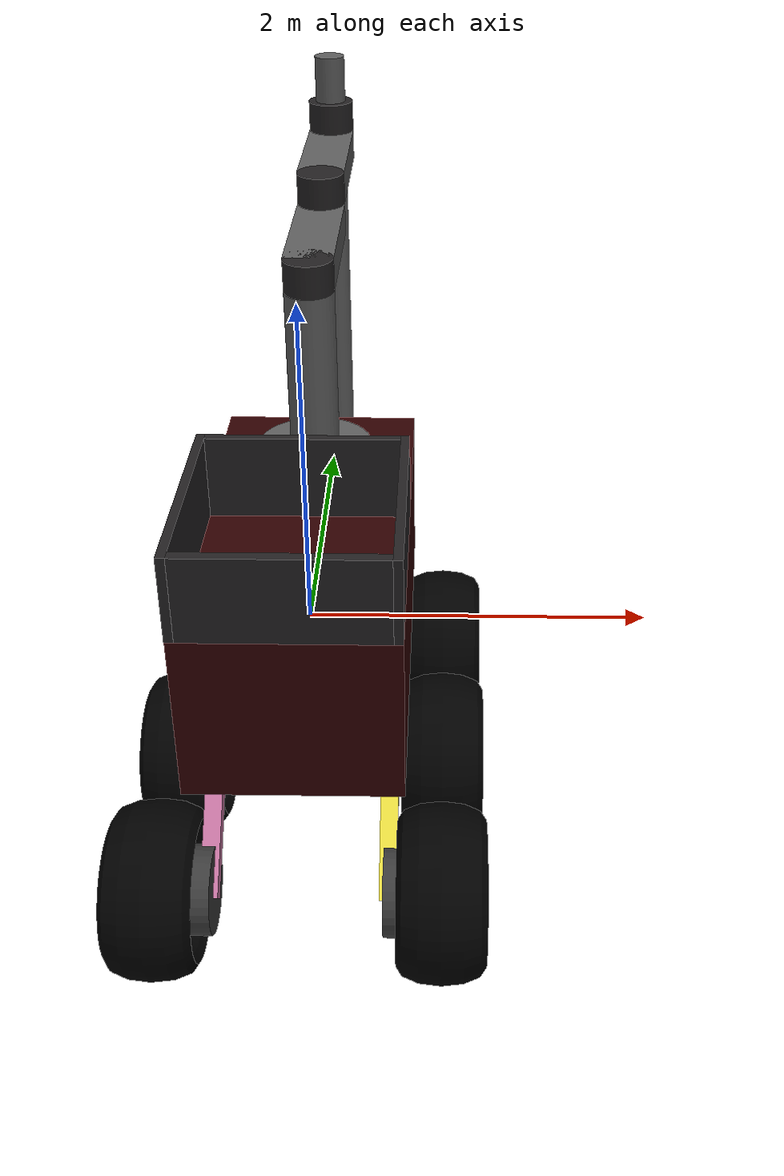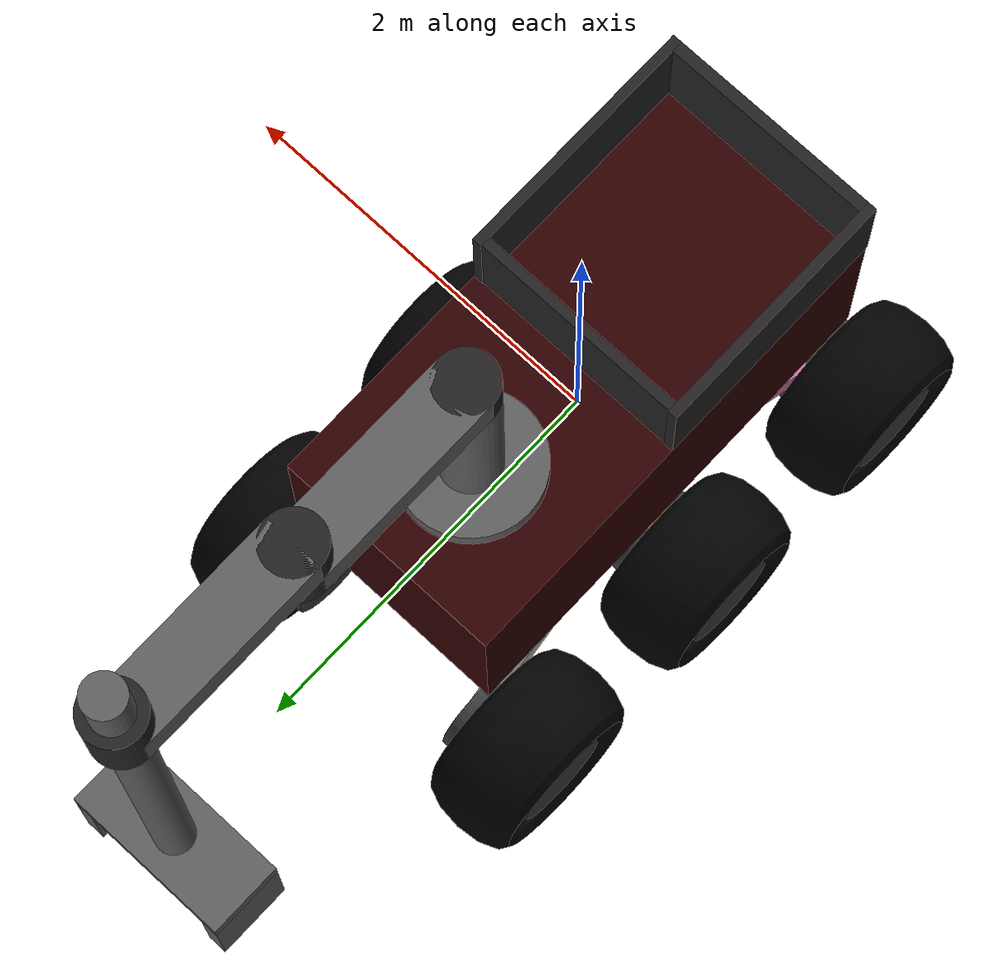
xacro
<?xml version="1.0"?>
<robot xmlns:xacro="http://www.ros.org/wiki/xacro" name="rover">

    <!-- includes -->
    <xacro:include filename="$(find rover_description)/urdf/base/robot_base.urdf.xacro"/>
    <xacro:include filename="$(find rover_description)/urdf/wheels/rover_wheel.urdf.xacro"/>
    <xacro:include filename="$(find rover_description)/urdf/arm/scara.urdf.xacro"/>
    <xacro:include filename="$(find rover_description)/urdf/arm/gripper.urdf.xacro"/>
    <xacro:include filename="$(find rover_description)/urdf/ros2_control.urdf.xacro"/>
    <xacro:include filename="$(find rover_description)/urdf/utils/utils.urdf.xacro"/>

    <xacro:include filename="$(find rover_description)/urdf/sensors/camera_grip.urdf.xacro"/>
    <xacro:include filename="$(find rover_description)/urdf/sensors/front_camera.urdf.xacro"/>
    <xacro:include filename="$(find rover_description)/urdf/sensors/imu_sensor.urdf.xacro"/>

    <!-- argumentos -->
    <xacro:arg name="robot_ns" default=""/>
    <xacro:arg name="prefix" default=""/>

    <!-- Robot Parts -->

    <!-- Base -->
    <xacro:robot_base/>

    <!-- utils -->
    <xacro:utils/>

    <!-- Wheels -->
    <xacro:rover_wheel parent_link="base_link">
    </xacro:rover_wheel>

    <!-- Arm -->
    <xacro:scara parent_link="base_link">
    </xacro:scara>
    <xacro:gripper parent_link="Cilindro_verti_5_link">
    </xacro:gripper>

    <!-- Sensors -->
    <xacro:camera_grip parent_link="base_link">
    </xacro:camera_grip>

    <xacro:front_camera parent_link="base_link">
    </xacro:front_camera>

    <xacro:imu_sensor parent_link="base_link">
    </xacro:imu_sensor>

    <!-- Gazebo ROS control plugins -->

    <xacro:arg name="config_controllers" default="$(find rover_description)/config/rover_control.yaml"/>
    <xacro:arg name="update_rate" default="100"/>

    <xacro:ros2_control/>
</robot>

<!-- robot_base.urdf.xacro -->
<!-- created with Phobos 1.0.1 "Capricious Choutengan" -->
<robot name="rover" xmlns:xacro="http://wiki.ros.org/xacro">

  <xacro:macro name="robot_base">

    <joint name="pared_d_link_joint" type="fixed">
      <origin rpy="0.00000 -1.57080 0.00000" xyz="0.57500 -0.61000 0.75000"/>
      <parent link="base_link"/>
      <child link="pared_d_link"/>
    </joint>
    <joint name="pared_delantera_link_joint" type="fixed">
      <origin rpy="1.57080 -1.57080 0.00000" xyz="0.00000 0.01000 0.75000"/>
      <parent link="base_link"/>
      <child link="pared_delantera_link"/>
    </joint>
    <joint name="pared_i_link_joint" type="fixed">
      <origin rpy="-0.00000 1.57080 0.00000" xyz="-0.57500 -0.61000 0.75000"/>
      <parent link="base_link"/>
      <child link="pared_i_link"/>
    </joint>
    <joint name="pared_trasera_link_joint" type="fixed">
      <origin rpy="-1.57080 1.57080 0.00000" xyz="0.00000 -1.23000 0.75000"/>
      <parent link="base_link"/>
      <child link="pared_trasera_link"/>
    </joint>

    <link name="Cilindro_link">
      <collision name="Cilindro_collision">
        <origin rpy="0.00000 -0.00000 0.00000" xyz="-0.00000 0.00000 -0.00000"/>
        <geometry>
          <mesh filename="file://$(find rover_description)/meshes/dae/Cilindro.008.dae" scale="0.15000 0.15000 0.10000"/>
        </geometry>
      </collision>
      <inertial>
        <inertia ixx="0.00223" ixy="0.00000" ixz="-0.00000" iyy="0.00223" iyz="0.00000" izz="0.00279"/>
        <origin rpy="0.00000 0.00000 0.00000" xyz="-0.00000 0.00000 -0.00000"/>
        <mass value="0.25000"/>
      </inertial>
      <visual name="Cilindro">
        <origin rpy="0.00000 0.00000 0.00000" xyz="0.00000 0.00000 0.00000"/>
        <material name="Material"/>
        <geometry>
          <mesh filename="file://$(find rover_description)/meshes/dae/Cilindro.008.dae" scale="0.15000 0.15000 0.10000"/>
        </geometry>
      </visual>
    </link>

    <joint name="base_link_joint" type="fixed">
      <origin rpy="0.00000 0.00000 0.00000" xyz="0.00000 0.00000 0.20000"/>
      <parent link="base_footprint"/>
      <child link="base_link"/>
    </joint>
    <link name="base_footprint"/>
    <link name="base_link">
      <collision name="Cube_collision">
        <origin rpy="0.00000 0.00000 0.00000" xyz="0.00000 0.00000 0.00000"/>
        <geometry>
          <box size="1.20000 2.50000 1.00000"/>
        </geometry>
      </collision>
      <inertial>
        <inertia ixx="18.12499" ixy="-0.00000" ixz="0.00000" iyy="6.10000" iyz="0.00000" izz="19.22499"/>
        <origin rpy="0.00000 0.00000 0.00000" xyz="0.00000 0.00000 0.00000"/>
        <mass value="30.00000"/>
      </inertial>
      <visual name="Cube">
        <origin rpy="0.00000 0.00000 0.00000" xyz="0.00000 0.00000 0.00000"/>
        <material name="Material.002"/>
        <geometry>
          <mesh filename="file://$(find rover_description)/meshes/dae/Cube.dae" scale="0.60000 1.25000 0.50000"/>
        </geometry>
      </visual>
    </link>

    <link name="pared_d_link">
      <collision name="pared_d_collision">
        <origin rpy="-0.00000 1.57080 0.00000" xyz="-0.00000 0.00000 0.00000"/>
        <geometry>
          <box size="0.05000 1.30000 0.50000"/>
        </geometry>
      </collision>
      <visual name="pared_d">
        <origin rpy="-0.00000 1.57080 0.00000" xyz="-0.00000 0.00000 -0.00000"/>
        <material name="Material"/>
        <geometry>
          <box size="0.05000 1.30000 0.50000"/>
        </geometry>
      </visual>
    </link>
    <link name="pared_delantera_link">
      <collision name="pared_delantera_collision">
        <origin rpy="1.92225 1.57080 1.92225" xyz="0.00000 -0.00000 0.00000"/>
        <geometry>
          <box size="0.05000 1.10000 0.50000"/>
        </geometry>
      </collision>
      <visual name="pared_delantera">
        <origin rpy="2.12339 1.57080 2.12339" xyz="-0.00000 -0.00000 0.00000"/>
        <material name="Material"/>
        <geometry>
          <box size="0.05000 1.10000 0.50000"/>
        </geometry>
      </visual>
    </link>
    <link name="pared_i_link">
      <collision name="pared_i_collision">
        <origin rpy="0.00000 -1.57080 0.00000" xyz="0.00000 0.00000 0.00000"/>
        <geometry>
          <box size="0.05000 1.30000 0.50000"/>
        </geometry>
      </collision>
      <visual name="pared_i">
        <origin rpy="0.00000 -1.57080 0.00000" xyz="-0.00000 -0.00000 -0.00000"/>
        <material name="Material"/>
        <geometry>
          <box size="0.05000 1.30000 0.50000"/>
        </geometry>
      </visual>
    </link>
    <link name="pared_trasera_link">
      <collision name="pared_trasera_collision">
        <origin rpy="-1.57080 -1.57080 1.57080" xyz="0.00000 0.00000 0.00000"/>
        <geometry>
          <box size="0.06000 1.10000 0.50000"/>
        </geometry>
      </collision>
      <visual name="pared_trasera">
        <origin rpy="-1.57080 -1.57080 1.57080" xyz="0.00000 0.00000 -0.00000"/>
        <material name="Material"/>
        <geometry>
          <box size="0.06000 1.10000 0.50000"/>
        </geometry>
      </visual>
    </link>

  </xacro:macro>
</robot>

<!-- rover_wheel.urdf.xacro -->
<!-- created with Phobos 1.0.1 "Capricious Choutengan" -->
<robot name="rover" xmlns:xacro="http://wiki.ros.org/xacro">

  <xacro:macro name="rover_wheel" params="parent_link">

    <!-- Ruedas -->
    <!-- ROBOT NAME? -->
    <joint name="Rueda_D1_link_joint" type="continuous">
      <limit lower="0" upper="0" effort="25.00000" velocity="5.00000"/>
      <origin rpy="3.14159 0.00000 3.14159" xyz="-0.00000 0.00000 -0.05000"/>
      <parent link="Cilindro_D1_link"/>
      <child link="Rueda_D1_link"/>
      <axis xyz="0.00000 0.00000 1.00000"/>
    </joint>
    <joint name="Rueda_D2_link_joint" type="continuous">
      <limit lower="0" upper="0" effort="25.00000" velocity="5.00000"/>
      <origin rpy="3.14159 0.00000 -3.14159" xyz="-0.00000 -0.00000 -0.05000"/>
      <parent link="Cilindro_D2_link"/>
      <child link="Rueda_D2_link"/>
      <axis xyz="0.00000 0.00000 1.00000"/>
    </joint>
    <joint name="Rueda_D3_link_joint" type="continuous">
      <limit lower="0" upper="0" effort="25.00000" velocity="5.00000"/>
      <origin rpy="3.14159 0.00000 3.14159" xyz="0.00000 -0.00000 -0.05000"/>
      <parent link="Cilindro_D3_link"/>
      <child link="Rueda_D3_link"/>
      <axis xyz="0.00000 0.00000 1.00000"/>
    </joint>
    <joint name="Rueda_I1_link_joint" type="continuous">
      <limit lower="0" upper="0" effort="25.00000" velocity="5.00000"/>
      <origin rpy="3.14159 -0.00000 -3.14159" xyz="0.00000 -0.00000 -0.05000"/>
      <parent link="Cilindro_i1_link"/>
      <child link="Rueda_I1_link"/>
      <axis xyz="0.00000 0.00000 1.00000"/>
    </joint>
    <joint name="Rueda_I2_link_joint" type="continuous">
      <limit lower="0" upper="0" effort="25.00000" velocity="5.00000"/>
      <origin rpy="3.14159 -0.00000 3.14159" xyz="-0.00000 -0.00000 -0.05000"/>
      <parent link="Cilindro_i2_link"/>
      <child link="Rueda_I2_link"/>
      <axis xyz="0.00000 0.00000 1.00000"/>
    </joint>
    <joint name="Rueda_i3_link_joint" type="continuous">
      <limit lower="0" upper="0" effort="25.00000" velocity="5.00000"/>
      <origin rpy="3.14159 -0.00000 -3.14159" xyz="0.00000 -0.00000 -0.05000"/>
      <parent link="Cilindro_i3_link"/>
      <child link="Rueda_i3_link"/>
      <axis xyz="0.00000 0.00000 1.00000"/>
    </joint>

    <!-- llantas -->

    <joint name="Cilindro_D1_link_joint" type="fixed">
      <origin rpy="1.57080 0.78540 -1.57080" xyz="0.25000 0.03536 -0.60104"/>
      <parent link="Cubo_d1_link"/>
      <child link="Cilindro_D1_link"/>
    </joint>
    <joint name="Cilindro_D2_link_joint" type="fixed">
      <origin rpy="1.57080 0.00000 -1.57080" xyz="0.25000 0.00000 -0.55000"/>
      <parent link="Cubo_d2_link"/>
      <child link="Cilindro_D2_link"/>
    </joint>
    <joint name="Cilindro_D3_link_joint" type="fixed">
      <origin rpy="1.57080 -0.78540 -1.57080" xyz="0.25000 -0.03536 -0.60104"/>
      <parent link="Cubo_d3_link"/>
      <child link="Cilindro_D3_link"/>
    </joint>
    <joint name="Cilindro_i1_link_joint" type="fixed">
      <origin rpy="1.57080 -0.78540 1.57080" xyz="-0.25000 0.03536 -0.60104"/>
      <parent link="Cubo_i1_link"/>
      <child link="Cilindro_i1_link"/>
    </joint>
    <joint name="Cilindro_i2_link_joint" type="fixed">
      <origin rpy="1.57080 -0.00000 1.57080" xyz="-0.25000 0.00000 -0.55000"/>
      <parent link="Cubo_i3_link"/>
      <child link="Cilindro_i2_link"/>
    </joint>
    <joint name="Cilindro_i3_link_joint" type="fixed">
      <origin rpy="1.57080 0.78540 1.57080" xyz="-0.25000 -0.03536 -0.60104"/>
      <parent link="Cubo_i2_link"/>
      <child link="Cilindro_i3_link"/>
    </joint>

    <!-- CONEXIONES -->

    <joint name="Cubo_d1_link_joint" type="fixed">
      <origin rpy="-0.78540 0.00000 0.00000" xyz="0.50000 -0.80000 -0.80000"/>
      <parent link="${parent_link}"/>
      <child link="Cubo_d1_link"/>
    </joint>
    <joint name="Cubo_d2_link_joint" type="fixed">
      <origin rpy="0.78540 0.00000 0.00000" xyz="0.50000 0.80000 -0.80000"/>
      <parent link="${parent_link}"/>
      <child link="Cubo_d3_link"/>
    </joint>
    <joint name="Cubo_d3_link_joint" type="fixed">
      <origin rpy="0.00000 0.00000 0.00000" xyz="0.50000 0.00000 -0.70000"/>
      <parent link="${parent_link}"/>
      <child link="Cubo_d2_link"/>
    </joint>
    <joint name="Cubo_i1_link_joint" type="fixed">
      <origin rpy="-0.78540 0.00000 0.00000" xyz="-0.50000 -0.80000 -0.80000"/>
      <parent link="${parent_link}"/>
      <child link="Cubo_i1_link"/>
    </joint>
    <joint name="Cubo_i2_link_joint" type="fixed">
      <origin rpy="0.78540 0.00000 0.00000" xyz="-0.50000 0.80000 -0.80000"/>
      <parent link="${parent_link}"/>
      <child link="Cubo_i2_link"/>
    </joint>
    <joint name="Cubo_i3_link_joint" type="fixed">
      <origin rpy="0.00000 0.00000 0.00000" xyz="-0.50000 0.00000 -0.70000"/>
      <parent link="${parent_link}"/>
      <child link="Cubo_i3_link"/>
    </joint>

    <!-- link RUEDAS -->

    <link name="Rueda_D1_link">
      <collision name="Rueda_D1_collision">
        <origin rpy="0.00000 0.00000 -0.00000" xyz="-0.00000 0.00000 0.00000"/>
        <geometry>
          <mesh filename="file://$(find rover_description)/meshes/dae/Rosca.dae" scale="0.40000 0.40000 1.00000"/>
        </geometry>
      </collision>
      <visual name="Rueda_D1">
        <origin rpy="0.00000 -0.00000 -0.00000" xyz="-0.00000 0.00000 0.00000"/>
        <material name="Material.007"/>
        <geometry>
          <mesh filename="file://$(find rover_description)/meshes/dae/Rosca.dae" scale="0.40000 0.40000 1.00000"/>
        </geometry>
      </visual>
    </link>
    <link name="Rueda_D2_link">
      <collision name="Rueda_D2_collision">
        <origin rpy="0.00000 0.00000 0.00000" xyz="0.00000 -0.00000 0.00000"/>
        <geometry>
          <mesh filename="file://$(find rover_description)/meshes/dae/Rosca.005.dae" scale="0.40000 0.40000 1.00000"/>
        </geometry>
      </collision>
      <visual name="Rueda_D2">
        <origin rpy="-0.00000 -0.00000 0.00000" xyz="-0.00000 0.00000 0.00000"/>
        <material name="Material.007"/>
        <geometry>
          <mesh filename="file://$(find rover_description)/meshes/dae/Rosca.005.dae" scale="0.40000 0.40000 1.00000"/>
        </geometry>
      </visual>
    </link>
    <link name="Rueda_D3_link">
      <collision name="Rueda_D3_collision">
        <origin rpy="0.00000 0.00000 0.00000" xyz="0.00000 0.00000 0.00000"/>
        <geometry>
          <mesh filename="file://$(find rover_description)/meshes/dae/Rosca.001.dae" scale="0.40000 0.40000 1.00000"/>
        </geometry>
      </collision>
      <visual name="Rueda_D3">
        <origin rpy="0.00000 0.00000 0.00000" xyz="0.00000 0.00000 0.00000"/>
        <material name="Material.007"/>
        <geometry>
          <mesh filename="file://$(find rover_description)/meshes/dae/Rosca.001.dae" scale="0.40000 0.40000 1.00000"/>
        </geometry>
      </visual>
    </link>
    <link name="Rueda_I1_link">
      <collision name="Rueda_I1_collision">
        <origin rpy="3.14159 0.00000 -3.14159" xyz="0.00000 0.00000 0.00000"/>
        <geometry>
          <mesh filename="file://$(find rover_description)/meshes/dae/Rosca.004.dae" scale="0.40000 0.40000 1.00000"/>
        </geometry>
      </collision>
      <visual name="Rueda_I1">
        <origin rpy="3.14159 0.00000 -3.14159" xyz="0.00000 0.00000 0.00000"/>
        <material name="Material.007"/>
        <geometry>
          <mesh filename="file://$(find rover_description)/meshes/dae/Rosca.004.dae" scale="0.40000 0.40000 1.00000"/>
        </geometry>
      </visual>
    </link>
    <link name="Rueda_I2_link">
      <collision name="Rueda_I2_collision">
        <origin rpy="3.14159 0.00000 -3.14159" xyz="-0.00000 -0.00000 0.00000"/>
        <geometry>
          <mesh filename="file://$(find rover_description)/meshes/dae/Rosca.003.dae" scale="0.40000 0.40000 1.00000"/>
        </geometry>
      </collision>
      <visual name="Rueda_I2">
        <origin rpy="3.14159 0.00000 3.14159" xyz="0.00000 0.00000 0.00000"/>
        <material name="Material.007"/>
        <geometry>
          <mesh filename="file://$(find rover_description)/meshes/dae/Rosca.003.dae" scale="0.40000 0.40000 1.00000"/>
        </geometry>
      </visual>
    </link>
    <link name="Rueda_i3_link">
      <collision name="Rueda_i3_collision">
        <origin rpy="3.14159 -0.00000 3.14159" xyz="0.00000 0.00000 0.00000"/>
        <geometry>
          <mesh filename="file://$(find rover_description)/meshes/dae/Rosca.002.dae" scale="0.40000 0.40000 1.00000"/>
        </geometry>
      </collision>
      <visual name="Rueda_i3">
        <origin rpy="3.14159 0.00000 3.14159" xyz="0.00000 0.00000 -0.00000"/>
        <material name="Material.007"/>
        <geometry>
          <mesh filename="file://$(find rover_description)/meshes/dae/Rosca.002.dae" scale="0.40000 0.40000 1.00000"/>
        </geometry>
      </visual>
    </link>

    <!-- link LLANTAS -->

    <link name="Cilindro_D1_link">
      <collision name="Cilindro_D1_collision">
        <origin rpy="3.14159 -0.00000 -3.14159" xyz="0.00000 0.00000 -0.00000"/>
        <geometry>
          <mesh filename="file://$(find rover_description)/meshes/dae/Cilindro.006.dae" scale="0.25000 0.25000 0.27500"/>
        </geometry>
      </collision>
      <inertial>
        <inertia ixx="0.00100" ixy="0.00000" ixz="0.00000" iyy="0.00100" iyz="-0.00000" izz="0.00100"/>
        <origin rpy="0.00000 0.00000 0.00000" xyz="0.00000 0.00000 -0.00000"/>
        <mass value="2.00000"/>
      </inertial>
      <visual name="Cilindro_D1">
        <origin rpy="3.14159 0.00000 3.14159" xyz="-0.00000 -0.00000 0.00000"/>
        <material name="Material.008"/>
        <geometry>
          <mesh filename="file://$(find rover_description)/meshes/dae/Cilindro.006.dae" scale="0.25000 0.25000 0.27500"/>
        </geometry>
      </visual>
    </link>
    <link name="Cilindro_D2_link">
      <collision name="Cilindro_D2_collision">
        <origin rpy="3.14159 0.00000 3.14159" xyz="0.00000 -0.00000 -0.00000"/>
        <geometry>
          <mesh filename="file://$(find rover_description)/meshes/dae/Cilindro.005.dae" scale="0.25000 0.25000 0.27500"/>
        </geometry>
      </collision>
      <inertial>
        <inertia ixx="0.00100" ixy="0.00000" ixz="0.00000" iyy="0.00100" iyz="0.00000" izz="0.00100"/>
        <origin rpy="0.00000 0.00000 0.00000" xyz="0.00000 0.00000 0.00000"/>
        <mass value="2.00000"/>
      </inertial>
      <visual name="Cilindro_D2">
        <origin rpy="3.14159 0.00000 -3.14159" xyz="0.00000 -0.00000 -0.00000"/>
        <material name="Material.008"/>
        <geometry>
          <mesh filename="file://$(find rover_description)/meshes/dae/Cilindro.005.dae" scale="0.25000 0.25000 0.27500"/>
        </geometry>
      </visual>
    </link>
    <link name="Cilindro_D3_link">
      <collision name="Cilindro_D3_collision">
        <origin rpy="3.14159 -0.00000 -3.14159" xyz="-0.00000 0.00000 -0.00000"/>
        <geometry>
          <mesh filename="file://$(find rover_description)/meshes/dae/Cilindro.001.dae" scale="0.25000 0.25000 0.27500"/>
        </geometry>
      </collision>
      <inertial>
        <inertia ixx="0.00100" ixy="0.00000" ixz="0.00000" iyy="0.00100" iyz="-0.00000" izz="0.00100"/>
        <origin rpy="0.00000 0.00000 0.00000" xyz="-0.00000 0.00000 0.00000"/>
        <mass value="2.00000"/>
      </inertial>
      <visual name="Cilindro_D3">
        <origin rpy="3.14159 0.00000 3.14159" xyz="0.00000 -0.00000 -0.00000"/>
        <material name="Material.008"/>
        <geometry>
          <mesh filename="file://$(find rover_description)/meshes/dae/Cilindro.001.dae" scale="0.25000 0.25000 0.27500"/>
        </geometry>
      </visual>
    </link>
    <link name="Cilindro_i1_link">
      <collision name="Cilindro_i1_collision">
        <origin rpy="0.00000 -0.00000 -0.00000" xyz="-0.00000 0.00000 -0.00000"/>
        <geometry>
          <mesh filename="file://$(find rover_description)/meshes/dae/Cilindro.004.dae" scale="0.25000 0.25000 0.27500"/>
        </geometry>
      </collision>
      <inertial>
        <inertia ixx="0.00100" ixy="-0.00000" ixz="-0.00000" iyy="0.00100" iyz="-0.00000" izz="0.00100"/>
        <origin rpy="0.00000 0.00000 0.00000" xyz="-0.00000 0.00000 -0.00000"/>
        <mass value="2.00000"/>
      </inertial>
      <visual name="Cilindro_i1">
        <origin rpy="0.00000 0.00000 -0.00000" xyz="-0.00000 -0.00000 0.00000"/>
        <material name="Material.008"/>
        <geometry>
          <mesh filename="file://$(find rover_description)/meshes/dae/Cilindro.004.dae" scale="0.25000 0.25000 0.27500"/>
        </geometry>
      </visual>
    </link>
    <link name="Cilindro_i2_link">
      <collision name="Cilindro_i2_collision">
        <origin rpy="-0.00000 -0.00000 -0.00000" xyz="-0.00000 -0.00000 -0.00000"/>
        <geometry>
          <mesh filename="file://$(find rover_description)/meshes/dae/Cilindro.002.dae" scale="0.25000 0.25000 0.27500"/>
        </geometry>
      </collision>
      <inertial>
        <inertia ixx="0.00100" ixy="-0.00000" ixz="-0.00000" iyy="0.00100" iyz="0.00000" izz="0.00100"/>
        <origin rpy="0.00000 0.00000 0.00000" xyz="0.00000 0.00000 0.00000"/>
        <mass value="2.00000"/>
      </inertial>
      <visual name="Cilindro_i2">
        <origin rpy="0.00000 0.00000 -0.00000" xyz="0.00000 0.00000 0.00000"/>
        <material name="Material.008"/>
        <geometry>
          <mesh filename="file://$(find rover_description)/meshes/dae/Cilindro.002.dae" scale="0.25000 0.25000 0.27500"/>
        </geometry>
      </visual>
    </link>
    <link name="Cilindro_i3_link">
      <collision name="Cilindro_i3_collision">
        <origin rpy="0.00000 0.00000 0.00000" xyz="0.00000 0.00000 -0.00000"/>
        <geometry>
          <mesh filename="file://$(find rover_description)/meshes/dae/Cilindro.003.dae" scale="0.25000 0.25000 0.27500"/>
        </geometry>
      </collision>
      <inertial>
        <inertia ixx="0.00100" ixy="-0.00000" ixz="-0.00000" iyy="0.00100" iyz="-0.00000" izz="0.00100"/>
        <origin rpy="0.00000 0.00000 0.00000" xyz="0.00000 0.00000 0.00000"/>
        <mass value="2.00000"/>
      </inertial>
      <visual name="Cilindro_i3">
        <origin rpy="0.00000 0.00000 0.00000" xyz="0.00000 0.00000 0.00000"/>
        <material name="Material.008"/>
        <geometry>
          <mesh filename="file://$(find rover_description)/meshes/dae/Cilindro.003.dae" scale="0.25000 0.25000 0.27500"/>
        </geometry>
      </visual>
    </link>

    <!-- link CONEXIONES -->

    <link name="Cubo_d1_link">
      <collision name="Dubo_d1_collision">
        <origin rpy="0.00000 0.00000 0.00000" xyz="-0.00000 0.00000 0.00000"/>
        <geometry>
          <box size="0.10000 0.10000 1.30000"/>
        </geometry>
      </collision>
      <inertial>
        <inertia ixx="0.00100" ixy="0.00000" ixz="0.00000" iyy="0.00100" iyz="0.00000" izz="0.00100"/>
        <origin rpy="0.00000 0.00000 0.00000" xyz="-0.00000 0.00000 -0.00000"/>
        <mass value="2.00000"/>
      </inertial>
      <visual name="Dubo_d1">
        <origin rpy="0.00000 0.00000 0.00000" xyz="0.00000 0.00000 -0.00000"/>
        <geometry>
          <mesh filename="file://$(find rover_description)/meshes/dae/Cubo.005.dae" scale="0.05000 0.05000 0.65000"/>
        </geometry>
      </visual>
    </link>

    <link name="Cubo_d2_link">
      <collision name="Cubo_d3_collision">
        <origin rpy="0.00000 0.00000 0.00000" xyz="0.00000 0.00000 0.00000"/>
        <geometry>
          <box size="0.10000 0.10000 1.10000"/>
        </geometry>
      </collision>
      <inertial>
        <inertia ixx="0.00100" ixy="0.00000" ixz="0.00000" iyy="0.00100" iyz="0.00000" izz="0.00100"/>
        <origin rpy="0.00000 0.00000 0.00000" xyz="0.00000 0.00000 0.00000"/>
        <mass value="2.00000"/>
      </inertial>
      <visual name="Cubo_d3">
        <origin rpy="0.00000 0.00000 0.00000" xyz="0.00000 0.00000 -0.00000"/>
        <geometry>
          <mesh filename="file://$(find rover_description)/meshes/dae/Cubo.004.dae" scale="0.05000 0.05000 0.55000"/>
        </geometry>
      </visual>
    </link>

    <link name="Cubo_d3_link">
      <collision name="Cubo_d2_collision">
        <origin rpy="-0.00000 0.00000 0.00000" xyz="-0.00000 -0.00000 0.00000"/>
        <geometry>
          <box size="0.10000 0.10000 1.30000"/>
        </geometry>
      </collision>
      <inertial>
        <inertia ixx="0.00100" ixy="0.00000" ixz="0.00000" iyy="0.00100" iyz="0.00000" izz="0.00100"/>
        <origin rpy="0.00000 0.00000 0.00000" xyz="-0.00000 -0.00000 -0.00000"/>
        <mass value="2.00000"/>
      </inertial>
      <visual name="Cubo_d2">
        <origin rpy="-0.00000 0.00000 0.00000" xyz="0.00000 -0.00000 -0.00000"/>
        <geometry>
          <mesh filename="file://$(find rover_description)/meshes/dae/Cubo.003.dae" scale="0.05000 0.05000 0.65000"/>
        </geometry>
      </visual>
    </link>

    <link name="Cubo_i1_link">
      <collision name="Cubo_i1_collision">
        <origin rpy="0.00000 0.00000 0.00000" xyz="0.00000 0.00000 0.00000"/>
        <geometry>
          <box size="0.10000 0.10000 1.30000"/>
        </geometry>
      </collision>
      <visual name="Cubo_i1">
        <origin rpy="0.00000 0.00000 0.00000" xyz="0.00000 0.00000 -0.00000"/>
        <geometry>
          <mesh filename="file://$(find rover_description)/meshes/dae/Cubo.dae" scale="0.05000 0.05000 0.65000"/>
        </geometry>
      </visual>
    </link>
    <link name="Cubo_i2_link">
      <collision name="Cubo_i2_collision">
        <origin rpy="-0.00000 0.00000 0.00000" xyz="-0.00000 -0.00000 -0.00000"/>
        <geometry>
          <mesh filename="file://$(find rover_description)/meshes/dae/Cubo.001.dae" scale="0.05000 0.05000 0.65000"/>
        </geometry>
      </collision>
      <visual name="Cubo_i2">
        <origin rpy="-0.00000 0.00000 0.00000" xyz="0.00000 -0.00000 -0.00000"/>
        <geometry>
          <mesh filename="file://$(find rover_description)/meshes/dae/Cubo.001.dae" scale="0.05000 0.05000 0.65000"/>
        </geometry>
      </visual>
    </link>

    <link name="Cubo_i3_link">
      <collision name="Cubo_i3_collision">
        <origin rpy="0.00000 0.00000 0.00000" xyz="-0.00000 0.00000 -0.00000"/>
        <geometry>
          <mesh filename="file://$(find rover_description)/meshes/dae/Cubo.002.dae" scale="0.05000 0.05000 0.55000"/>
        </geometry>
      </collision>
      <visual name="Cubo_i3">
        <origin rpy="0.00000 0.00000 0.00000" xyz="-0.00000 0.00000 -0.00000"/>
        <geometry>
          <mesh filename="file://$(find rover_description)/meshes/dae/Cubo.002.dae" scale="0.05000 0.05000 0.55000"/>
        </geometry>
      </visual>
    </link>

  </xacro:macro>
</robot>

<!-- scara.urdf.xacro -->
<!-- created with Phobos 1.0.1 "Capricious Choutengan" -->
<robot name="rover" xmlns:xacro="http://wiki.ros.org/xacro">

  <xacro:macro name="scara" params="parent_link">

    <!-- JOINT BRAZO -->
    <joint name="00_base_b_link_joint" type="fixed">
      <origin rpy="-0.00000 1.57080 0.00000" xyz="0.00000 0.70000 0.55000"/>
      <parent link="${parent_link}"/>
      <child link="base_b_link"/>
    </joint>
    <joint name="01_Cilindro_verti_1_link_joint" type="fixed">
      <origin rpy="0.00000 -1.57080 0.00000" xyz="-0.55000 0.00000 0.00000"/>
      <parent link="base_b_link"/>
      <child link="Cilindro_verti_1_link"/>
    </joint>

    <joint name="03_horizontal1_link_joint" type="fixed">
      <origin rpy="0.00000 0.00000 0.00000" xyz="0.00000 0.50000 -0.00000"/>
      <parent link="Cilindro_link"/>
      <child link="horizontal1_link"/>
    </joint>
    <joint name="04_Cilindro_verti_3_link_joint" type="revolute">
      <limit lower="-2.15000" upper="2.15000" effort="25.00000" velocity="0.00000"/>
      <origin rpy="0.00000 0.00000 0.00000" xyz="0.00000 0.50000 0.10000"/>
      <parent link="horizontal1_link"/>
      <child link="Cilindro_verti_3_link"/>
      <axis xyz="0.00000 0.00000 1.00000"/>
    </joint>
    <joint name="05_horizontal2_link_joint" type="fixed">
      <origin rpy="0.00000 0.00000 0.00000" xyz="-0.00000 0.50000 0.10000"/>
      <parent link="Cilindro_verti_3_link"/>
      <child link="horizontal2_link"/>
    </joint>
    <joint name="06_Cilindro_verti_4_link_joint" type="fixed">
      <origin rpy="0.00000 0.00000 0.00000" xyz="0.00000 0.50000 0.10000"/>
      <parent link="horizontal2_link"/>
      <child link="Cilindro_verti_4_link"/>
    </joint>

    <joint name="02_Cilindro_link_joint" type="revolute">
      <limit lower="-6.28000" upper="6.28000" effort="25.00000" velocity="0.00000"/>
      <origin rpy="0.00000 0.00000 0.00000" xyz="0.00000 0.00000 0.60000"/>
      <parent link="Cilindro_verti_1_link"/>
      <child link="Cilindro_link"/>
      <axis xyz="0.00000 0.00000 1.00000"/>
    </joint>

    <joint name="07_Cilindro_verti_5_link_joint" type="prismatic">
      <limit lower="-2.00000" upper="2.50000" effort="25.00000" velocity="0.00000"/>
      <origin rpy="0.00000 0.00000 0.00000" xyz="0.00000 -0.01000 -1.00000"/>
      <parent link="Cilindro_verti_4_link"/>
      <child link="Cilindro_verti_5_link"/>
      <axis xyz="0.00000 0.00000 1.00000"/>
    </joint>

<!-- LINK SCARA -->
    <link name="base_b_link">
      <collision name="base_b_collision">
        <origin rpy="0.00000 -1.57080 0.00000" xyz="0.00000 -0.00000 0.00000"/>
        <geometry>
          <mesh filename="file://$(find rover_description)/meshes/dae/Cilindro.dae" scale="0.35000 0.35000 0.05000"/>
        </geometry>
      </collision>
      <inertial>
        <inertia ixx="0.03126" ixy="0.00000" ixz="0.00000" iyy="0.03126" iyz="0.00000" izz="0.06086"/>
        <origin rpy="0.00000 0.00000 0.00000" xyz="0.00000 -0.00000 0.00000"/>
        <mass value="1.00000"/>
      </inertial>
      <visual name="base_b">
        <origin rpy="0.00000 -1.57080 0.00000" xyz="0.00000 -0.00000 -0.00000"/>
        <material name="Material.001"/>
        <geometry>
          <mesh filename="file://$(find rover_description)/meshes/dae/Cilindro.dae" scale="0.35000 0.35000 0.05000"/>
        </geometry>
      </visual>
    </link>

    <link name="horizontal1_link">
      <collision name="horizontal1_collision">
        <origin rpy="0.00000 0.00000 0.00000" xyz="0.00000 -0.00000 0.00000"/>
        <geometry>
          <mesh filename="file://$(find rover_description)/meshes/dae/Cubo.020.dae" scale="0.15000 0.50000 0.10000"/>
        </geometry>
      </collision>
      <inertial>
        <inertia ixx="0.08667" ixy="0.00000" ixz="0.00000" iyy="0.01083" iyz="0.00000" izz="0.09083"/>
        <origin rpy="0.00000 0.00000 0.00000" xyz="0.00000 -0.00000 0.00000"/>
        <mass value="1.00000"/>
      </inertial>
      <visual name="horizontal1">
        <origin rpy="0.00000 0.00000 0.00000" xyz="0.00000 -0.00000 -0.00000"/>
        <material name="Material.001"/>
        <geometry>
          <mesh filename="file://$(find rover_description)/meshes/dae/Cubo.020.dae" scale="0.15000 0.50000 0.10000"/>
        </geometry>
      </visual>
    </link>
    <link name="horizontal2_link">
      <collision name="horizontal2_collision">
        <origin rpy="0.00000 0.00000 0.00000" xyz="0.00000 -0.00000 -0.00000"/>
        <geometry>
          <mesh filename="file://$(find rover_description)/meshes/dae/Cubo.021.dae" scale="0.15000 0.50000 0.10000"/>
        </geometry>
      </collision>
      <inertial>
        <inertia ixx="0.08667" ixy="0.00000" ixz="0.00000" iyy="0.01083" iyz="0.00000" izz="0.09083"/>
        <origin rpy="0.00000 0.00000 0.00000" xyz="0.00000 0.00000 -0.00000"/>
        <mass value="1.00000"/>
      </inertial>
      <visual name="horizontal2">
        <origin rpy="0.00000 0.00000 0.00000" xyz="0.00000 -0.00000 -0.00000"/>
        <material name="Material.001"/>
        <geometry>
          <mesh filename="file://$(find rover_description)/meshes/dae/Cubo.021.dae" scale="0.15000 0.50000 0.10000"/>
        </geometry>
      </visual>
    </link>

    <link name="Cilindro_verti_1_link">
      <inertial>
        <inertia ixx="0.08892" ixy="0.00000" ixz="-0.00000" iyy="0.08892" iyz="-0.00000" izz="0.01118"/>
        <origin rpy="0.00000 0.00000 0.00000" xyz="-0.00000 0.00000 0.00000"/>
        <mass value="1.00000"/>
      </inertial>
      <visual name="Cilindro_verti_1">
        <origin rpy="0.00000 0.00000 0.00000" xyz="0.00000 0.00000 0.00000"/>
        <material name="Material.001"/>
        <geometry>
          <mesh filename="file://$(find rover_description)/meshes/dae/Cilindro.007.dae" scale="0.15000 0.15000 0.50000"/>
        </geometry>
      </visual>
    </link>
    <link name="Cilindro_verti_3_link">
      <collision name="Cilindro_verti_3_collision">
        <origin rpy="0.00000 0.00000 0.00000" xyz="0.00000 -0.00000 -0.00000"/>
        <geometry>
          <mesh filename="file://$(find rover_description)/meshes/dae/Cilindro.009.dae" scale="0.15000 0.15000 0.20000"/>
        </geometry>
      </collision>
      <inertial>
        <inertia ixx="0.00946" ixy="0.00000" ixz="-0.00000" iyy="0.00946" iyz="0.00000" izz="0.00559"/>
        <origin rpy="0.00000 0.00000 0.00000" xyz="-0.00000 -0.00000 -0.00000"/>
        <mass value="0.50000"/>
      </inertial>
      <visual name="Cilindro_verti_3">
        <origin rpy="0.00000 0.00000 0.00000" xyz="0.00000 -0.00000 -0.00000"/>
        <material name="Material"/>
        <geometry>
          <mesh filename="file://$(find rover_description)/meshes/dae/Cilindro.009.dae" scale="0.15000 0.15000 0.20000"/>
        </geometry>
      </visual>
    </link>
    <link name="Cilindro_verti_4_link">
      <collision name="Cilindro_verti_4_collision">
        <origin rpy="0.00000 0.00000 0.00000" xyz="0.00000 -0.00000 0.00000"/>
        <geometry>
          <mesh filename="file://$(find rover_description)/meshes/dae/Cilindro.010.dae" scale="0.15000 0.15000 0.20000"/>
        </geometry>
      </collision>
      <inertial>
        <inertia ixx="0.00946" ixy="0.00000" ixz="-0.00000" iyy="0.00946" iyz="0.00000" izz="0.00559"/>
        <origin rpy="0.00000 0.00000 0.00000" xyz="-0.00000 -0.00000 -0.00000"/>
        <mass value="0.50000"/>
      </inertial>
      <visual name="Cilindro_verti_4">
        <origin rpy="0.00000 0.00000 0.00000" xyz="0.00000 -0.00000 0.00000"/>
        <material name="Material"/>
        <geometry>
          <mesh filename="file://$(find rover_description)/meshes/dae/Cilindro.010.dae" scale="0.15000 0.15000 0.20000"/>
        </geometry>
      </visual>
    </link>
    <link name="Cilindro_verti_5_link">
      <collision name="Cilindro_verti_5_collision">
        <origin rpy="0.00000 0.00000 0.00000" xyz="0.00000 0.01000 0.00000"/>
        <geometry>
          <mesh filename="file://$(find rover_description)/meshes/dae/Cilindro.011.dae" scale="0.10000 0.10000 1.50000"/>
        </geometry>
      </collision>
      <inertial>
        <inertia ixx="1.12873" ixy="-0.00000" ixz="0.00000" iyy="1.12873" iyz="0.00000" izz="0.00745"/>
        <origin rpy="0.00000 0.00000 0.00000" xyz="0.00000 0.01000 -0.00000"/>
        <mass value="1.50000"/>
      </inertial>
      <visual name="Cilindro_verti_5">
        <origin rpy="0.00000 0.00000 0.00000" xyz="0.00000 0.01000 -0.00000"/>
        <material name="Material.001"/>
        <geometry>
          <mesh filename="file://$(find rover_description)/meshes/dae/Cilindro.011.dae" scale="0.10000 0.10000 1.50000"/>
        </geometry>
      </visual>
    </link>

  </xacro:macro>
</robot>

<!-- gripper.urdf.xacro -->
<!-- created with Phobos 1.0.1 "Capricious Choutengan" -->
<robot name="rover" xmlns:xacro="http://wiki.ros.org/xacro">

  <xacro:macro name="gripper" params="parent_link">

    <joint name="08_grip_link_joint" type="revolute">
      <limit lower="-1.57000" upper="1.57000" effort="25.00000" velocity="5.00000"/>
      <origin rpy="0.00000 0.00000 0.00000" xyz="0.00000 0.01000 -1.50000"/>
      <parent link="${parent_link}"/>
      <child link="grip_link"/>
      <axis xyz="0.00000 0.00000 1.00000"/>
    </joint>
    <joint name="09_grip_d_link_joint" type="prismatic">
      <limit lower="-0.11000" upper="0.00000" effort="25.00000" velocity="5.00000"/>
      <origin rpy="0.00000 1.57080 0.00000" xyz="0.40000 0.00000 -0.30000"/>
      <parent link="grip_link"/>
      <child link="grip_d_link"/>
      <axis xyz="0.00000 0.00000 1.00000"/>
    </joint>
    <joint name="09_grip_i_link_joint" type="prismatic">
      <limit lower="-0.11000" upper="0.00000" effort="25.00000" velocity="0.00000"/>
      <origin rpy="0.00000 -1.57080 0.00000" xyz="-0.40000 0.00000 -0.30000"/>
      <parent link="grip_link"/>
      <child link="grip_i_link"/>
      <axis xyz="0.00000 0.00000 1.00000"/>
    </joint>

    <link name="grip_d_link">
      <collision name="grip_d_collision">
        <origin rpy="0.00000 -0.00000 0.00000" xyz="0.00000 -0.00000 -0.00000"/>
        <geometry>
          <box size="0.50000 0.40000 0.10000"/>
        </geometry>
      </collision>
      <inertial>
        <inertia ixx="0.01708" ixy="0.00000" ixz="-0.00000" iyy="0.01083" iyz="0.00000" izz="0.00708"/>
        <origin rpy="0.00000 0.00000 0.00000" xyz="0.00000 -0.00000 0.00000"/>
        <mass value="0.50000"/>
      </inertial>
      <visual name="grip_d">
        <origin rpy="0.00000 0.00000 0.00000" xyz="0.00000 -0.00000 0.00000"/>
        <material name="Material.001"/>
        <geometry>
          <box size="0.50000 0.40000 0.10000"/>
        </geometry>
      </visual>
    </link>
    <link name="grip_i_link">
      <collision name="grip_i_collision">
        <origin rpy="3.14159 0.00000 3.14159" xyz="-0.00000 -0.00000 0.00000"/>
        <geometry>
          <box size="0.50000 0.40000 0.10000"/>
        </geometry>
      </collision>
      <inertial>
        <inertia ixx="0.01708" ixy="0.00000" ixz="0.00000" iyy="0.01083" iyz="0.00000" izz="0.00708"/>
        <origin rpy="0.00000 0.00000 0.00000" xyz="0.00000 -0.00000 0.00000"/>
        <mass value="0.50000"/>
      </inertial>
      <visual name="grip_i">
        <origin rpy="3.14159 0.00000 3.14159" xyz="-0.00000 -0.00000 -0.00000"/>
        <material name="Material.001"/>
        <geometry>
          <box size="0.50000 0.40000 0.10000"/>
        </geometry>
      </visual>
    </link>
    <link name="grip_link">
      <collision name="grip_collision">
        <origin rpy="0.00000 -0.00000 0.00000" xyz="-0.00000 0.00000 -0.00000"/>
        <geometry>
          <box size="0.90000 0.40000 0.10000"/>
        </geometry>
      </collision>
      <inertial>
        <inertia ixx="0.00708" ixy="0.00000" ixz="-0.00000" iyy="0.03417" iyz="0.00000" izz="0.04042"/>
        <origin rpy="0.00000 0.00000 0.00000" xyz="0.00000 0.00000 -0.00000"/>
        <mass value="0.50000"/>
      </inertial>
      <visual name="grip">
        <origin rpy="0.00000 -0.00000 0.00000" xyz="0.00000 -0.00000 0.00000"/>
        <material name="Material.001"/>
        <geometry>
          <box size="0.90000 0.40000 0.10000"/>
        </geometry>
      </visual>
    </link>

  </xacro:macro>
</robot>

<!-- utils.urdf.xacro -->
<!-- created with Phobos 1.0.1 "Capricious Choutengan" -->
<robot name="rover" xmlns:xacro="http://wiki.ros.org/xacro">

  <xacro:macro name="utils">

    <material name="Material">
      <color rgba="0.14118 0.13333 0.13725 1.00000"/>
    </material>
    <material name="Material.001">
      <color rgba="0.37255 0.37255 0.37255 1.00000"/>
    </material>
    <material name="Material.002">
      <color rgba="0.18824 0.00000 0.00392 1.00000"/>
    </material>
    <material name="Material.007">
      <color rgba="0.00000 0.00000 0.00000 1.00000"/>
    </material>
    <material name="Material.008">
      <color rgba="0.23922 0.23922 0.23922 1.00000"/>
    </material>

  </xacro:macro>
</robot>

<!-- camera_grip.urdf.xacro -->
<!-- created with Phobos 1.0.1 "Capricious Choutengan" -->
<robot name="rover" xmlns:xacro="http://wiki.ros.org/xacro">

  <xacro:macro name="camera_grip" params="parent_link">

    <joint name="Camara_grip_link_joint" type="fixed">
      <origin rpy="0.00000 0.00000 0.00000" xyz="0.00000 2.70000 -0.55000"/>
      <parent link="${parent_link}"/>
      <child link="Camara_grip_link"/>
    </joint>

  <link name="Camara_grip_link"/>

    <gazebo reference="Camara_grip_link">
      <sensor name="camera_grip" type="camera">
        <visualize>true</visualize>
        <update_rate>30</update_rate>
        <topic>/arm_camera/image</topic>
        <camera>
          <horizontal_fov>1.5708</horizontal_fov>
          <image>
            <width>640</width>
            <height>480</height>
            <format>R8G8B8</format>
        </image>
        <clip>
          <near>0.10</near>
          <far>15.0</far>
        </clip>
        <noise>
          <type>gaussian</type>
          <mean>0.0</mean>
          <stddev>0.007</stddev>
        </noise>
        <optical_frame_id>Camara_grip_link</optical_frame_id>
      </camera>
      </sensor>
    </gazebo>

  </xacro:macro>
</robot>

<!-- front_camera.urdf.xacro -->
<!-- created with Phobos 1.0.1 "Capricious Choutengan" -->
<robot name="rover" xmlns:xacro="http://wiki.ros.org/xacro">

  <xacro:macro name="front_camera" params="parent_link">

    <joint name="Camara_frontal_link_joint" type="fixed">
        <origin rpy="0.00000 0.00000 0.00000" xyz="0.00000 1.35000 0.50000"/>
        <parent link="${parent_link}"/>
        <child link="Camara_frontal_link"/>
    </joint>

    <link name="Camara_frontal_link"/>

    <gazebo reference="Camara_frontal_link">
      <sensor name="front_camera" type="camera">
        <visualize>true</visualize>
        <update_rate>30</update_rate>
        <topic>/front_camera/image</topic>
        <camera>
          <horizontal_fov>1.5708</horizontal_fov>
          <image>
            <width>640</width>
            <height>480</height>
            <format>R8G8B8</format>
        </image>
        <clip>
          <near>0.10</near>
          <far>15.0</far>
        </clip>
        <noise>
          <type>gaussian</type>
          <mean>0.0</mean>
          <stddev>0.007</stddev>
        </noise>
        <optical_frame_id>Camara_frontal_link</optical_frame_id>
      </camera>
      </sensor>
    </gazebo>

  </xacro:macro>
</robot>

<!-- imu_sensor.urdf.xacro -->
<!-- created with Phobos 1.0.1 "Capricious Choutengan" -->
<robot name="rover" xmlns:xacro="http://wiki.ros.org/xacro">

  <xacro:macro name="imu_sensor" params="parent_link">

    <joint name="Sensor_link_joint" type="fixed">
      <origin rpy="0.00000 0.00000 0.00000" xyz="0.00000 0.00000 -0.00000"/>
      <parent link="${parent_link}"/>
      <child link="Sensor_link"/>
    </joint>

    <link name="Sensor_link"/>

    <gazebo reference="Sensor_link">
      <sensor name="imu_sensor" type="imu">
        <always_on>1</always_on>
        <update_rate>30</update_rate>
        <topic>/imu_data</topic>
      </sensor>
    </gazebo>
  </xacro:macro>
</robot>
